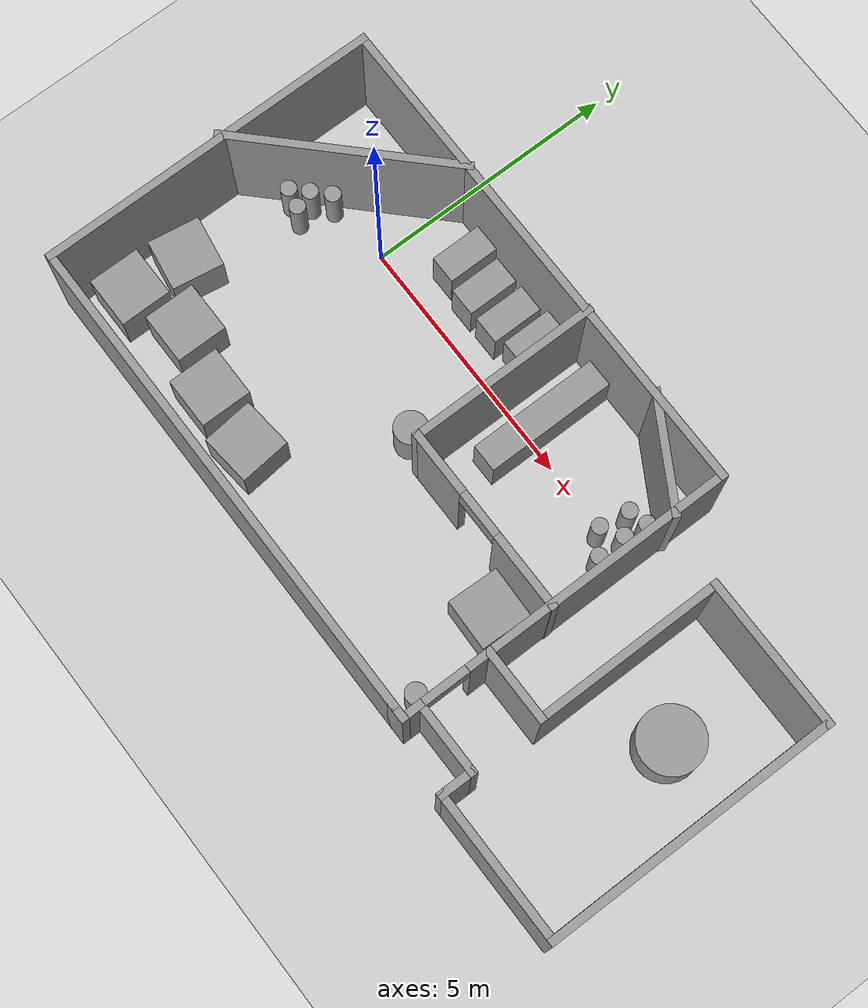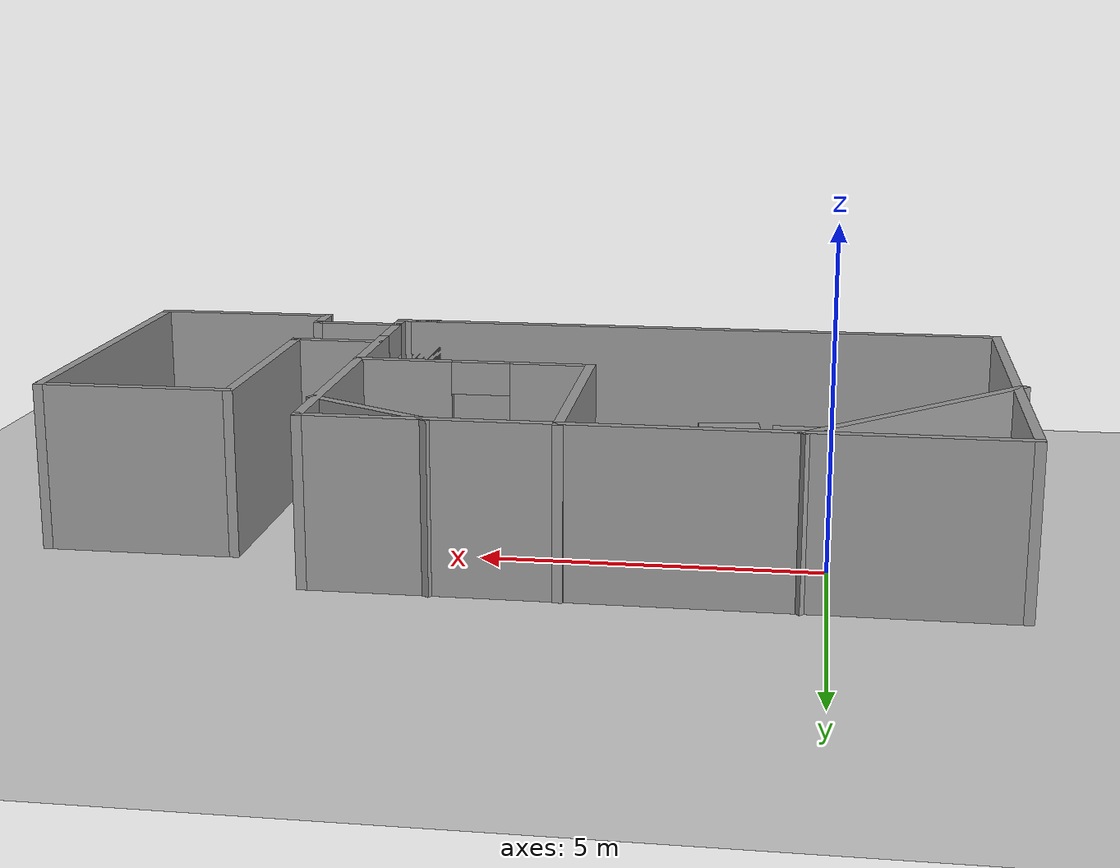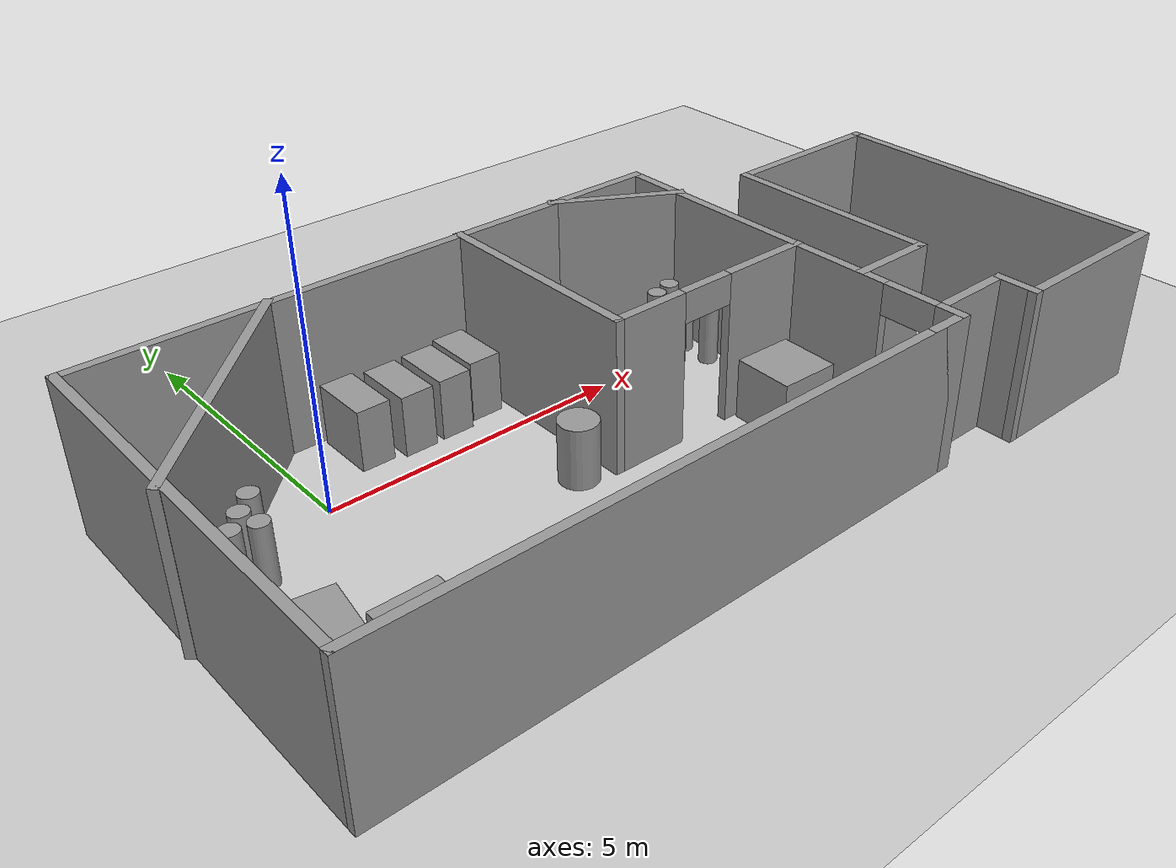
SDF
<sdf version="1.7">
 <world name="default">
  <light name="sun" type="directional">
   <pose>0 0 10 0 -0 0</pose>
   <diffuse>0.8 0.8 0.8 1</diffuse>
   <specular>0.2 0.2 0.2 1</specular>
   <attenuation>
    <range>1000</range>
    <constant>0.9</constant>
    <linear>0.01</linear>
    <quadratic>0.001</quadratic>
   </attenuation>
   <direction>-0.5 0.1 -0.9</direction>
   <spot><inner_angle>0</inner_angle><outer_angle>0</outer_angle><falloff>0</falloff></spot>
  </light>
  <model name="ground_plane">
   <static>1</static>
   <link name="link">
    <collision name="collision">
     <geometry><plane><normal>0 0 1</normal><size>100 100</size></plane></geometry>
     <surface>
      <contact><collide_bitmask>65535</collide_bitmask></contact>
      <friction><ode><mu>100</mu><mu2>50</mu2></ode></friction>
     </surface>
    </collision>
    <visual name="visual">
     <cast_shadows>0</cast_shadows>
     <geometry><plane><normal>0 0 1</normal><size>100 100</size></plane></geometry>
     <material>
      <script><uri>file://media/materials/scripts/gazebo.material</uri><name>Gazebo/Grey</name></script>
     </material>
    </visual>
   </link>
  </model>
  <gravity>0 0 -9.8</gravity>
  <magnetic_field>6e-06 2.3e-05 -4.2e-05</magnetic_field>
  <atmosphere type="adiabatic"/>
  <physics type="ode">
   <max_step_size>0.001</max_step_size>
   <real_time_factor>1</real_time_factor>
   <real_time_update_rate>1000</real_time_update_rate>
  </physics>
  <scene><ambient>0.4 0.4 0.4 1</ambient><background>0.7 0.7 0.7 1</background><shadows>1</shadows></scene>
  <spherical_coordinates>
   <surface_model>EARTH_WGS84</surface_model>
   <latitude_deg>0</latitude_deg>
   <longitude_deg>0</longitude_deg>
   <elevation>0</elevation>
   <heading_deg>0</heading_deg>
  </spherical_coordinates>
  <model name="Untitled2">
   <pose>4.33151 -1.72419 0 0 -0 0</pose>
   <link name="Wall_0">
    <collision name="Wall_0_Collision">
     <geometry><box><size>9.75 0.15 2.5</size></box></geometry>
     <pose>0 0 1.25 0 -0 0</pose>
    </collision>
    <visual name="Wall_0_Visual">
     <pose>0 0 1.25 0 -0 0</pose>
     <geometry><box><size>9.75 0.15 2.5</size></box></geometry>
     <material>
      <script><uri>file://media/materials/scripts/gazebo.material</uri><name>Gazebo/Grey</name></script>
      <ambient>1 1 1 1</ambient>
     </material>
     <meta><layer>0</layer></meta>
    </visual>
    <pose>-2.17151 -3.20581 0 0 -0 0</pose>
   </link>
   <link name="Wall_10">
    <pose>1.09249 -0.177808 0 0 -0 0</pose>
    <visual name="Wall_10_Visual_0">
     <pose>-1.223 0 1.25 0 -0 0</pose>
     <geometry><box><size>1.304 0.15 2.5</size></box></geometry>
     <material>
      <script><uri>file://media/materials/scripts/gazebo.material</uri><name>Gazebo/Grey</name></script>
      <ambient>1 1 1 1</ambient>
     </material>
     <meta><layer>0</layer></meta>
    </visual>
    <collision name="Wall_10_Collision_0">
     <geometry><box><size>1.304 0.15 2.5</size></box></geometry>
     <pose>-1.223 0 1.25 0 -0 0</pose>
    </collision>
    <visual name="Wall_10_Visual_1">
     <pose>1.102 0 1.25 0 -0 0</pose>
     <geometry><box><size>1.546 0.15 2.5</size></box></geometry>
     <material>
      <script><uri>file://media/materials/scripts/gazebo.material</uri><name>Gazebo/Grey</name></script>
      <ambient>1 1 1 1</ambient>
     </material>
     <meta><layer>0</layer></meta>
    </visual>
    <collision name="Wall_10_Collision_1">
     <geometry><box><size>1.546 0.15 2.5</size></box></geometry>
     <pose>1.102 0 1.25 0 -0 0</pose>
    </collision>
    <visual name="Wall_10_Visual_2">
     <pose>-0.121 0 2.25 0 -0 0</pose>
     <geometry><box><size>0.9 0.15 0.5</size></box></geometry>
     <material>
      <script><uri>file://media/materials/scripts/gazebo.material</uri><name>Gazebo/Grey</name></script>
      <ambient>1 1 1 1</ambient>
     </material>
     <meta><layer>0</layer></meta>
    </visual>
    <collision name="Wall_10_Collision_2">
     <geometry><box><size>0.9 0.15 0.5</size></box></geometry>
     <pose>-0.121 0 2.25 0 -0 0</pose>
    </collision>
   </link>
   <link name="Wall_12">
    <collision name="Wall_12_Collision">
     <geometry><box><size>4.5 0.15 2.5</size></box></geometry>
     <pose>0 0 1.25 0 -0 0</pose>
    </collision>
    <visual name="Wall_12_Visual">
     <pose>0 0 1.25 0 -0 0</pose>
     <geometry><box><size>4.5 0.15 2.5</size></box></geometry>
     <material>
      <script><uri>file://media/materials/scripts/gazebo.material</uri><name>Gazebo/Grey</name></script>
      <ambient>1 1 1 1</ambient>
     </material>
     <meta><layer>0</layer></meta>
    </visual>
    <pose>-5.51147 1.88424 0 0 -0 -2.35619</pose>
   </link>
   <link name="Wall_14">
    <collision name="Wall_14_Collision">
     <geometry><box><size>1.5 0.15 2.5</size></box></geometry>
     <pose>0 0 1.25 0 -0 0</pose>
    </collision>
    <visual name="Wall_14_Visual">
     <pose>0 0 1.25 0 -0 0</pose>
     <geometry><box><size>1.5 0.15 2.5</size></box></geometry>
     <material>
      <script><uri>file://media/materials/scripts/gazebo.material</uri><name>Gazebo/Grey</name></script>
      <ambient>1 1 1 1</ambient>
     </material>
     <meta><layer>0</layer></meta>
    </visual>
    <pose>3.55549 -1.45381 0 0 -0 0</pose>
   </link>
   <link name="Wall_15">
    <collision name="Wall_15_Collision">
     <geometry><box><size>3.75 0.15 2.5</size></box></geometry>
     <pose>0 0 1.25 0 -0 0</pose>
    </collision>
    <visual name="Wall_15_Visual">
     <pose>0 0 1.25 0 -0 0</pose>
     <geometry><box><size>3.75 0.15 2.5</size></box></geometry>
     <material>
      <script><uri>file://media/materials/scripts/gazebo.material</uri><name>Gazebo/Grey</name></script>
      <ambient>1 1 1 1</ambient>
     </material>
     <meta><layer>0</layer></meta>
    </visual>
    <pose>4.23049 0.346192 0 0 -0 1.5708</pose>
   </link>
   <link name="Wall_16">
    <collision name="Wall_16_Collision">
     <geometry><box><size>3 0.15 2.5</size></box></geometry>
     <pose>0 0 1.25 0 -0 0</pose>
    </collision>
    <visual name="Wall_16_Visual">
     <pose>0 0 1.25 0 -0 0</pose>
     <geometry><box><size>3 0.15 2.5</size></box></geometry>
     <material>
      <script><uri>file://media/materials/scripts/gazebo.material</uri><name>Gazebo/Grey</name></script>
      <ambient>1 1 1 1</ambient>
     </material>
     <meta><layer>0</layer></meta>
    </visual>
    <pose>5.65549 2.14619 0 0 -0 0</pose>
   </link>
   <link name="Wall_17">
    <collision name="Wall_17_Collision">
     <geometry><box><size>5.75 0.15 2.5</size></box></geometry>
     <pose>0 0 1.25 0 -0 0</pose>
    </collision>
    <visual name="Wall_17_Visual">
     <pose>0 0 1.25 0 -0 0</pose>
     <geometry><box><size>5.75 0.15 2.5</size></box></geometry>
     <material>
      <script><uri>file://media/materials/scripts/gazebo.material</uri><name>Gazebo/Grey</name></script>
      <ambient>1 1 1 1</ambient>
     </material>
     <meta><layer>0</layer></meta>
    </visual>
    <pose>7.08049 -0.653808 0 0 -0 -1.5708</pose>
   </link>
   <link name="Wall_18">
    <collision name="Wall_18_Collision">
     <geometry><box><size>3 0.15 2.5</size></box></geometry>
     <pose>0 0 1.25 0 -0 0</pose>
    </collision>
    <visual name="Wall_18_Visual">
     <pose>0 0 1.25 0 -0 0</pose>
     <geometry><box><size>3 0.15 2.5</size></box></geometry>
     <material>
      <script><uri>file://media/materials/scripts/gazebo.material</uri><name>Gazebo/Grey</name></script>
      <ambient>1 1 1 1</ambient>
     </material>
     <meta><layer>0</layer></meta>
    </visual>
    <pose>5.65549 -3.45381 0 0 -0 3.14159</pose>
   </link>
   <link name="Wall_21">
    <collision name="Wall_21_Collision">
     <geometry><box><size>0.75 0.15 2.5</size></box></geometry>
     <pose>0 0 1.25 0 -0 0</pose>
    </collision>
    <visual name="Wall_21_Visual">
     <pose>0 0 1.25 0 -0 0</pose>
     <geometry><box><size>0.75 0.15 2.5</size></box></geometry>
     <material>
      <script><uri>file://media/materials/scripts/gazebo.material</uri><name>Gazebo/Grey</name></script>
      <ambient>1 1 1 1</ambient>
     </material>
     <meta><layer>0</layer></meta>
    </visual>
    <pose>4.23049 -3.15381 0 0 -0 1.5708</pose>
   </link>
   <link name="Wall_22">
    <collision name="Wall_22_Collision">
     <geometry><box><size>1.5 0.15 2.5</size></box></geometry>
     <pose>0 0 1.25 0 -0 0</pose>
    </collision>
    <visual name="Wall_22_Visual">
     <pose>0 0 1.25 0 -0 0</pose>
     <geometry><box><size>1.5 0.15 2.5</size></box></geometry>
     <material>
      <script><uri>file://media/materials/scripts/gazebo.material</uri><name>Gazebo/Grey</name></script>
      <ambient>1 1 1 1</ambient>
     </material>
     <meta><layer>0</layer></meta>
    </visual>
    <pose>3.55549 -2.85381 0 0 -0 3.14159</pose>
   </link>
   <link name="Wall_25">
    <collision name="Wall_25_Collision">
     <geometry><box><size>2.25 0.15 2.5</size></box></geometry>
     <pose>0 0 1.25 0 -0 0</pose>
    </collision>
    <visual name="Wall_25_Visual">
     <pose>0 0 1.25 0 -0 0</pose>
     <geometry><box><size>2.25 0.15 2.5</size></box></geometry>
     <material>
      <script><uri>file://media/materials/scripts/gazebo.material</uri><name>Gazebo/Grey</name></script>
      <ambient>1 1 1 1</ambient>
     </material>
     <meta><layer>0</layer></meta>
    </visual>
    <pose>2.00746 2.90136 0 0 -0 -0.523599</pose>
   </link>
   <link name="Wall_4">
    <collision name="Wall_4_Collision">
     <geometry><box><size>6.75 0.15 2.5</size></box></geometry>
     <pose>0 0 1.25 0 -0 0</pose>
    </collision>
    <visual name="Wall_4_Visual">
     <pose>0 0 1.25 0 -0 0</pose>
     <geometry><box><size>6.75 0.15 2.5</size></box></geometry>
     <material>
      <script><uri>file://media/materials/scripts/gazebo.material</uri><name>Gazebo/Grey</name></script>
      <ambient>1 1 1 1</ambient>
     </material>
     <meta><layer>0</layer></meta>
    </visual>
    <pose>-6.97151 0.094192 0 0 -0 1.5708</pose>
   </link>
   <link name="Wall_5">
    <collision name="Wall_5_Collision">
     <geometry><box><size>10 0.15 2.5</size></box></geometry>
     <pose>0 0 1.25 0 -0 0</pose>
    </collision>
    <visual name="Wall_5_Visual">
     <pose>0 0 1.25 0 -0 0</pose>
     <geometry><box><size>10 0.15 2.5</size></box></geometry>
     <material>
      <script><uri>file://media/materials/scripts/gazebo.material</uri><name>Gazebo/Grey</name></script>
      <ambient>1 1 1 1</ambient>
     </material>
     <meta><layer>0</layer></meta>
    </visual>
    <pose>-2.04651 3.39419 0 0 -0 0</pose>
   </link>
   <link name="Wall_6">
    <pose>2.87849 0.094192 0 0 -0 -1.5708</pose>
    <visual name="Wall_6_Visual_0">
     <pose>-0.69 0 1.25 0 -0 0</pose>
     <geometry><box><size>5.37 0.15 2.5</size></box></geometry>
     <material>
      <script><uri>file://media/materials/scripts/gazebo.material</uri><name>Gazebo/Grey</name></script>
      <ambient>1 1 1 1</ambient>
     </material>
     <meta><layer>0</layer></meta>
    </visual>
    <collision name="Wall_6_Collision_0">
     <geometry><box><size>5.37 0.15 2.5</size></box></geometry>
     <pose>-0.69 0 1.25 0 -0 0</pose>
    </collision>
    <visual name="Wall_6_Visual_1">
     <pose>3.135 0 1.25 0 -0 0</pose>
     <geometry><box><size>0.48 0.15 2.5</size></box></geometry>
     <material>
      <script><uri>file://media/materials/scripts/gazebo.material</uri><name>Gazebo/Grey</name></script>
      <ambient>1 1 1 1</ambient>
     </material>
     <meta><layer>0</layer></meta>
    </visual>
    <collision name="Wall_6_Collision_1">
     <geometry><box><size>0.48 0.15 2.5</size></box></geometry>
     <pose>3.135 0 1.25 0 -0 0</pose>
    </collision>
    <visual name="Wall_6_Visual_2">
     <pose>2.445 0 2.25 0 -0 0</pose>
     <geometry><box><size>0.9 0.15 0.5</size></box></geometry>
     <material>
      <script><uri>file://media/materials/scripts/gazebo.material</uri><name>Gazebo/Grey</name></script>
      <ambient>1 1 1 1</ambient>
     </material>
     <meta><layer>0</layer></meta>
    </visual>
    <collision name="Wall_6_Collision_2">
     <geometry><box><size>0.9 0.15 0.5</size></box></geometry>
     <pose>2.445 0 2.25 0 -0 0</pose>
    </collision>
   </link>
   <link name="Wall_7">
    <collision name="Wall_7_Collision">
     <geometry><box><size>0.75 0.15 2.5</size></box></geometry>
     <pose>0 0 1.25 0 -0 0</pose>
    </collision>
    <visual name="Wall_7_Visual">
     <pose>0 0 1.25 0 -0 0</pose>
     <geometry><box><size>0.75 0.15 2.5</size></box></geometry>
     <material>
      <script><uri>file://media/materials/scripts/gazebo.material</uri><name>Gazebo/Grey</name></script>
      <ambient>1 1 1 1</ambient>
     </material>
     <meta><layer>0</layer></meta>
    </visual>
    <pose>2.57849 -3.20581 0 0 -0 3.14159</pose>
   </link>
   <link name="Wall_9">
    <collision name="Wall_9_Collision">
     <geometry><box><size>3.75 0.15 2.5</size></box></geometry>
     <pose>0 0 1.25 0 -0 0</pose>
    </collision>
    <visual name="Wall_9_Visual">
     <pose>0 0 1.25 0 -0 0</pose>
     <geometry><box><size>3.75 0.15 2.5</size></box></geometry>
     <material>
      <script><uri>file://media/materials/scripts/gazebo.material</uri><name>Gazebo/Grey</name></script>
      <ambient>1 1 1 1</ambient>
     </material>
     <meta><layer>0</layer></meta>
    </visual>
    <pose>-0.70751 1.62219 0 0 -0 -1.5708</pose>
   </link>
   <static>1</static>
  </model>
  <model name="unit_box">
   <pose>-1.93541 -4.03873 0.499995 0 1e-05 0</pose>
   <link name="link">
    <inertial>
     <mass>1</mass>
     <inertia>
      <ixx>0.166667</ixx>
      <ixy>0</ixy>
      <ixz>0</ixz>
      <iyy>0.166667</iyy>
      <iyz>0</iyz>
      <izz>0.166667</izz>
     </inertia>
    </inertial>
    <collision name="collision"><geometry><box><size>1 1 1</size></box></geometry></collision>
    <visual name="visual">
     <geometry><box><size>1 1 1</size></box></geometry>
     <material>
      <script><name>Gazebo/Grey</name><uri>file://media/materials/scripts/gazebo.material</uri></script>
     </material>
    </visual>
   </link>
  </model>
  <model name="unit_box_0">
   <pose>-0.803345 -3.64948 0.499995 -1e-05 0 0</pose>
   <link name="link">
    <inertial>
     <mass>1</mass>
     <inertia>
      <ixx>0.166667</ixx>
      <ixy>0</ixy>
      <ixz>0</ixz>
      <iyy>0.166667</iyy>
      <iyz>0</iyz>
      <izz>0.166667</izz>
     </inertia>
    </inertial>
    <collision name="collision"><geometry><box><size>1 1 1</size></box></geometry></collision>
    <visual name="visual">
     <geometry><box><size>1 1 1</size></box></geometry>
     <material>
      <script><name>Gazebo/Grey</name><uri>file://media/materials/scripts/gazebo.material</uri></script>
     </material>
    </visual>
   </link>
  </model>
  <model name="unit_box_1">
   <pose>0.406914 -4.00401 0.499995 0 1e-05 0</pose>
   <link name="link">
    <inertial>
     <mass>1</mass>
     <inertia>
      <ixx>0.166667</ixx>
      <ixy>0</ixy>
      <ixz>0</ixz>
      <iyy>0.166667</iyy>
      <iyz>0</iyz>
      <izz>0.166667</izz>
     </inertia>
    </inertial>
    <collision name="collision"><geometry><box><size>1 1 1</size></box></geometry></collision>
    <visual name="visual">
     <geometry><box><size>1 1 1</size></box></geometry>
     <material>
      <script><name>Gazebo/Grey</name><uri>file://media/materials/scripts/gazebo.material</uri></script>
     </material>
    </visual>
   </link>
  </model>
  <model name="unit_box_2">
   <pose>1.58499 -4.07215 0.5 0 -0 0.102046</pose>
   <link name="link">
    <inertial>
     <mass>1</mass>
     <inertia>
      <ixx>0.166667</ixx>
      <ixy>0</ixy>
      <ixz>0</ixz>
      <iyy>0.166667</iyy>
      <iyz>0</iyz>
      <izz>0.166667</izz>
     </inertia>
    </inertial>
    <collision name="collision"><geometry><box><size>1 1 1</size></box></geometry></collision>
    <visual name="visual">
     <geometry><box><size>1 1 1</size></box></geometry>
     <material>
      <script><name>Gazebo/Grey</name><uri>file://media/materials/scripts/gazebo.material</uri></script>
     </material>
    </visual>
   </link>
  </model>
  <model name="unit_box_3">
   <pose>-1.8487 -2.89199 0.499995 -1e-05 0 -0.156279</pose>
   <link name="link">
    <inertial>
     <mass>1</mass>
     <inertia>
      <ixx>0.166667</ixx>
      <ixy>0</ixy>
      <ixz>0</ixz>
      <iyy>0.166667</iyy>
      <iyz>0</iyz>
      <izz>0.166667</izz>
     </inertia>
    </inertial>
    <collision name="collision"><geometry><box><size>1 1 1</size></box></geometry></collision>
    <visual name="visual">
     <geometry><box><size>1 1 1</size></box></geometry>
     <material>
      <script><name>Gazebo/Grey</name><uri>file://media/materials/scripts/gazebo.material</uri></script>
     </material>
    </visual>
   </link>
  </model>
  <model name="unit_box_4">
   <pose>3.13754 1.04298 0.499999 0 3e-06 -6e-05</pose>
   <link name="link">
    <inertial>
     <mass>1</mass>
     <inertia>
      <ixx>0.166667</ixx>
      <ixy>0</ixy>
      <ixz>0</ixz>
      <iyy>0.166667</iyy>
      <iyz>0</iyz>
      <izz>0.166667</izz>
     </inertia>
    </inertial>
    <collision name="collision"><geometry><box><size>0.540484 0.972281 1</size></box></geometry></collision>
    <visual name="visual">
     <geometry><box><size>0.540484 0.972281 1</size></box></geometry>
     <material>
      <script><name>Gazebo/Grey</name><uri>file://media/materials/scripts/gazebo.material</uri></script>
     </material>
    </visual>
   </link>
  </model>
  <model name="unit_box_4_clone">
   <pose>2.50244 0.938001 0.5 0 0 -3.3e-05</pose>
   <link name="link">
    <inertial>
     <mass>1</mass>
     <inertia>
      <ixx>0.166667</ixx>
      <ixy>0</ixy>
      <ixz>0</ixz>
      <iyy>0.166667</iyy>
      <iyz>0</iyz>
      <izz>0.166667</izz>
     </inertia>
    </inertial>
    <collision name="collision"><geometry><box><size>0.540485 1 1</size></box></geometry></collision>
    <visual name="visual">
     <geometry><box><size>0.540485 1 1</size></box></geometry>
     <material>
      <script><name>Gazebo/Grey</name><uri>file://media/materials/scripts/gazebo.material</uri></script>
     </material>
    </visual>
   </link>
  </model>
  <model name="unit_box_4_clone_0">
   <pose>1.83225 0.923037 0.5 0 0 -5.6e-05</pose>
   <link name="link">
    <inertial>
     <mass>1</mass>
     <inertia>
      <ixx>0.166667</ixx>
      <ixy>0</ixy>
      <ixz>0</ixz>
      <iyy>0.166667</iyy>
      <iyz>0</iyz>
      <izz>0.166667</izz>
     </inertia>
    </inertial>
    <collision name="collision"><geometry><box><size>0.540485 1 1</size></box></geometry></collision>
    <visual name="visual">
     <geometry><box><size>0.540485 1 1</size></box></geometry>
     <material>
      <script><name>Gazebo/Grey</name><uri>file://media/materials/scripts/gazebo.material</uri></script>
     </material>
    </visual>
   </link>
  </model>
  <model name="unit_box_4_clone_1">
   <pose>1.14845 1.01676 0.5 0 -0 2.4e-05</pose>
   <link name="link">
    <inertial>
     <mass>1</mass>
     <inertia>
      <ixx>0.166667</ixx>
      <ixy>0</ixy>
      <ixz>0</ixz>
      <iyy>0.166667</iyy>
      <iyz>0</iyz>
      <izz>0.166667</izz>
     </inertia>
    </inertial>
    <collision name="collision"><geometry><box><size>0.540485 1 1</size></box></geometry></collision>
    <visual name="visual">
     <geometry><box><size>0.540485 1 1</size></box></geometry>
     <material>
      <script><name>Gazebo/Grey</name><uri>file://media/materials/scripts/gazebo.material</uri></script>
     </material>
    </visual>
   </link>
  </model>
  <model name="unit_box_4_clone_2">
   <pose>4.31061 0.270571 0.499929 5.6e-05 -0 0.0002</pose>
   <link name="link">
    <inertial>
     <mass>1</mass>
     <inertia>
      <ixx>0.166667</ixx>
      <ixy>0</ixy>
      <ixz>0</ixz>
      <iyy>0.166667</iyy>
      <iyz>0</iyz>
      <izz>0.166667</izz>
     </inertia>
    </inertial>
    <collision name="collision"><geometry><box><size>0.540485 2.55111 1</size></box></geometry></collision>
    <visual name="visual">
     <geometry><box><size>0.540485 2.55111 1</size></box></geometry>
     <material>
      <script><name>Gazebo/Grey</name><uri>file://media/materials/scripts/gazebo.material</uri></script>
     </material>
    </visual>
   </link>
  </model>
  <model name="unit_cylinder_clone">
   <pose>-1.17562 -0.160338 0.499998 0 -0 1e-06</pose>
   <link name="link">
    <inertial>
     <mass>1</mass>
     <inertia><ixx>0.145833</ixx><ixy>0</ixy><ixz>0</ixz><iyy>0.145833</iyy><iyz>0</iyz><izz>0.125</izz></inertia>
    </inertial>
    <collision name="collision">
     <geometry><cylinder><radius>0.154614</radius><length>1</length></cylinder></geometry>
    </collision>
    <visual name="visual">
     <geometry><cylinder><radius>0.154614</radius><length>1</length></cylinder></geometry>
     <material>
      <script><name>Gazebo/Grey</name><uri>file://media/materials/scripts/gazebo.material</uri></script>
     </material>
    </visual>
   </link>
  </model>
  <model name="unit_cylinder_clone_0">
   <pose>-1.46438 -0.449109 0.499995 -0 -0 -0.000248</pose>
   <link name="link">
    <inertial>
     <mass>1</mass>
     <inertia><ixx>0.145833</ixx><ixy>0</ixy><ixz>0</ixz><iyy>0.145833</iyy><iyz>0</iyz><izz>0.125</izz></inertia>
    </inertial>
    <collision name="collision">
     <geometry><cylinder><radius>0.154614</radius><length>1</length></cylinder></geometry>
    </collision>
    <visual name="visual">
     <geometry><cylinder><radius>0.154614</radius><length>1</length></cylinder></geometry>
     <material>
      <script><name>Gazebo/Grey</name><uri>file://media/materials/scripts/gazebo.material</uri></script>
     </material>
    </visual>
   </link>
  </model>
  <model name="unit_cylinder_clone_1">
   <pose>-1.73607 -0.720808 0.499995 0 0 -0.000345</pose>
   <link name="link">
    <inertial>
     <mass>1</mass>
     <inertia><ixx>0.145833</ixx><ixy>0</ixy><ixz>0</ixz><iyy>0.145833</iyy><iyz>0</iyz><izz>0.125</izz></inertia>
    </inertial>
    <collision name="collision">
     <geometry><cylinder><radius>0.154614</radius><length>1</length></cylinder></geometry>
    </collision>
    <visual name="visual">
     <geometry><cylinder><radius>0.154614</radius><length>1</length></cylinder></geometry>
     <material>
      <script><name>Gazebo/Grey</name><uri>file://media/materials/scripts/gazebo.material</uri></script>
     </material>
    </visual>
   </link>
  </model>
  <model name="unit_cylinder_clone_1_clone">
   <pose>-1.36906 -0.799878 0.499995 0 0 -0.000345</pose>
   <link name="link">
    <inertial>
     <mass>1</mass>
     <inertia><ixx>0.145833</ixx><ixy>0</ixy><ixz>0</ixz><iyy>0.145833</iyy><iyz>0</iyz><izz>0.125</izz></inertia>
    </inertial>
    <collision name="collision">
     <geometry><cylinder><radius>0.154614</radius><length>1</length></cylinder></geometry>
    </collision>
    <visual name="visual">
     <geometry><cylinder><radius>0.154614</radius><length>1</length></cylinder></geometry>
     <material>
      <script><name>Gazebo/Grey</name><uri>file://media/materials/scripts/gazebo.material</uri></script>
     </material>
    </visual>
   </link>
  </model>
  <model name="unit_cylinder_clone_1_clone_0">
   <pose>6.91572 0.511753 0.499998 0 0 -0.000351</pose>
   <link name="link">
    <inertial>
     <mass>1</mass>
     <inertia><ixx>0.145833</ixx><ixy>0</ixy><ixz>0</ixz><iyy>0.145833</iyy><iyz>0</iyz><izz>0.125</izz></inertia>
    </inertial>
    <collision name="collision">
     <geometry><cylinder><radius>0.154614</radius><length>1</length></cylinder></geometry>
    </collision>
    <visual name="visual">
     <geometry><cylinder><radius>0.154614</radius><length>1</length></cylinder></geometry>
     <material>
      <script><name>Gazebo/Grey</name><uri>file://media/materials/scripts/gazebo.material</uri></script>
     </material>
    </visual>
   </link>
  </model>
  <model name="unit_cylinder_clone_1_clone_1">
   <pose>6.84453 0.068205 0.499992 0 -0 -0.00035</pose>
   <link name="link">
    <inertial>
     <mass>1</mass>
     <inertia><ixx>0.145833</ixx><ixy>0</ixy><ixz>0</ixz><iyy>0.145833</iyy><iyz>0</iyz><izz>0.125</izz></inertia>
    </inertial>
    <collision name="collision">
     <geometry><cylinder><radius>0.154614</radius><length>1</length></cylinder></geometry>
    </collision>
    <visual name="visual">
     <geometry><cylinder><radius>0.154614</radius><length>1</length></cylinder></geometry>
     <material>
      <script><name>Gazebo/Grey</name><uri>file://media/materials/scripts/gazebo.material</uri></script>
     </material>
    </visual>
   </link>
  </model>
  <model name="unit_cylinder_clone_1_clone_2">
   <pose>6.54963 0.413607 0.499998 0 0 -0.00035</pose>
   <link name="link">
    <inertial>
     <mass>1</mass>
     <inertia><ixx>0.145833</ixx><ixy>0</ixy><ixz>0</ixz><iyy>0.145833</iyy><iyz>0</iyz><izz>0.125</izz></inertia>
    </inertial>
    <collision name="collision">
     <geometry><cylinder><radius>0.154614</radius><length>1</length></cylinder></geometry>
    </collision>
    <visual name="visual">
     <geometry><cylinder><radius>0.154614</radius><length>1</length></cylinder></geometry>
     <material>
      <script><name>Gazebo/Grey</name><uri>file://media/materials/scripts/gazebo.material</uri></script>
     </material>
    </visual>
   </link>
  </model>
  <model name="unit_cylinder_clone_1_clone_3">
   <pose>6.85742 -0.495157 0.499992 -0 -0 -0.00035</pose>
   <link name="link">
    <inertial>
     <mass>1</mass>
     <inertia><ixx>0.145833</ixx><ixy>0</ixy><ixz>0</ixz><iyy>0.145833</iyy><iyz>0</iyz><izz>0.125</izz></inertia>
    </inertial>
    <collision name="collision">
     <geometry><cylinder><radius>0.154614</radius><length>1</length></cylinder></geometry>
    </collision>
    <visual name="visual">
     <geometry><cylinder><radius>0.154614</radius><length>1</length></cylinder></geometry>
     <material>
      <script><name>Gazebo/Grey</name><uri>file://media/materials/scripts/gazebo.material</uri></script>
     </material>
    </visual>
   </link>
  </model>
  <model name="unit_cylinder_clone_1_clone_4">
   <pose>6.45592 -0.16216 0.499998 0 0 -0.00035</pose>
   <link name="link">
    <inertial>
     <mass>1</mass>
     <inertia><ixx>0.145833</ixx><ixy>0</ixy><ixz>0</ixz><iyy>0.145833</iyy><iyz>0</iyz><izz>0.125</izz></inertia>
    </inertial>
    <collision name="collision">
     <geometry><cylinder><radius>0.154614</radius><length>1</length></cylinder></geometry>
    </collision>
    <visual name="visual">
     <geometry><cylinder><radius>0.154614</radius><length>1</length></cylinder></geometry>
     <material>
      <script><name>Gazebo/Grey</name><uri>file://media/materials/scripts/gazebo.material</uri></script>
     </material>
    </visual>
   </link>
  </model>
  <model name="unit_cylinder_clone_1_clone_5">
   <pose>6.84078 -4.39867 0.499995 0 0 -0.000342</pose>
   <link name="link">
    <inertial>
     <mass>1</mass>
     <inertia><ixx>0.145833</ixx><ixy>0</ixy><ixz>0</ixz><iyy>0.145833</iyy><iyz>0</iyz><izz>0.125</izz></inertia>
    </inertial>
    <collision name="collision">
     <geometry><cylinder><radius>0.200919</radius><length>1</length></cylinder></geometry>
    </collision>
    <visual name="visual">
     <geometry><cylinder><radius>0.200919</radius><length>1</length></cylinder></geometry>
     <material>
      <script><name>Gazebo/Grey</name><uri>file://media/materials/scripts/gazebo.material</uri></script>
     </material>
    </visual>
   </link>
  </model>
  <model name="unit_box_5">
   <pose>6.44691 -2.53335 0.499995 0 -1e-05 -0.032296</pose>
   <link name="link">
    <inertial>
     <mass>1</mass>
     <inertia>
      <ixx>0.166667</ixx>
      <ixy>0</ixy>
      <ixz>0</ixz>
      <iyy>0.166667</iyy>
      <iyz>0</iyz>
      <izz>0.166667</izz>
     </inertia>
    </inertial>
    <collision name="collision"><geometry><box><size>1 1 1</size></box></geometry></collision>
    <visual name="visual">
     <geometry><box><size>1 1 1</size></box></geometry>
     <material>
      <script><name>Gazebo/Grey</name><uri>file://media/materials/scripts/gazebo.material</uri></script>
     </material>
    </visual>
   </link>
  </model>
  <model name="unit_cylinder">
   <pose>10.0429 -1.48868 0.499994 4e-06 4e-06 1.3e-05</pose>
   <link name="link">
    <inertial>
     <mass>1</mass>
     <inertia><ixx>0.145833</ixx><ixy>0</ixy><ixz>0</ixz><iyy>0.145833</iyy><iyz>0</iyz><izz>0.125</izz></inertia>
    </inertial>
    <collision name="collision">
     <geometry><cylinder><radius>0.616741</radius><length>1</length></cylinder></geometry>
    </collision>
    <visual name="visual">
     <geometry><cylinder><radius>0.616741</radius><length>1</length></cylinder></geometry>
     <material>
      <script><name>Gazebo/Grey</name><uri>file://media/materials/scripts/gazebo.material</uri></script>
     </material>
    </visual>
   </link>
  </model>
  <model name="unit_cylinder_clone_1_clone_6">
   <pose>3.10562 -1.66918 0.499999 0 -0 -0.000344</pose>
   <link name="link">
    <inertial>
     <mass>1</mass>
     <inertia><ixx>0.145833</ixx><ixy>0</ixy><ixz>0</ixz><iyy>0.145833</iyy><iyz>0</iyz><izz>0.125</izz></inertia>
    </inertial>
    <collision name="collision">
     <geometry><cylinder><radius>0.312617</radius><length>1</length></cylinder></geometry>
    </collision>
    <visual name="visual">
     <geometry><cylinder><radius>0.312617</radius><length>1</length></cylinder></geometry>
     <material>
      <script><name>Gazebo/Grey</name><uri>file://media/materials/scripts/gazebo.material</uri></script>
     </material>
    </visual>
   </link>
  </model>
 </world>
</sdf>
